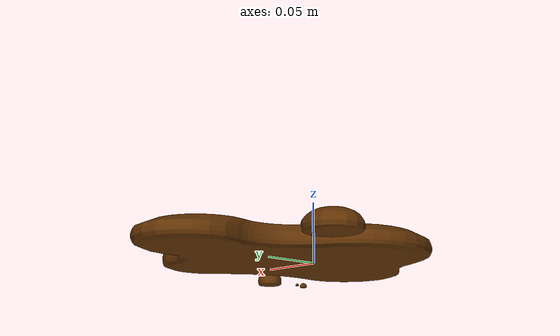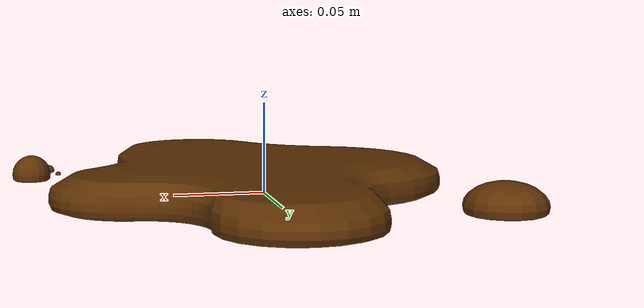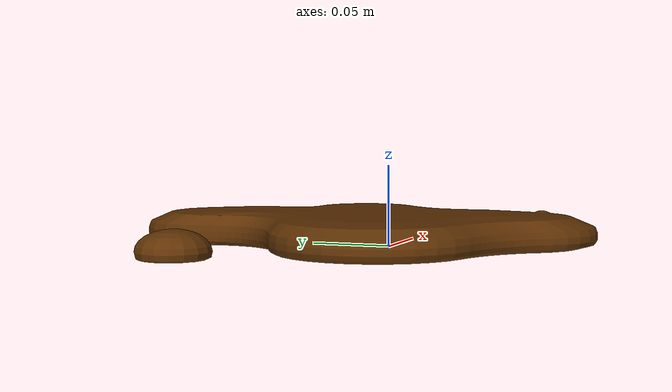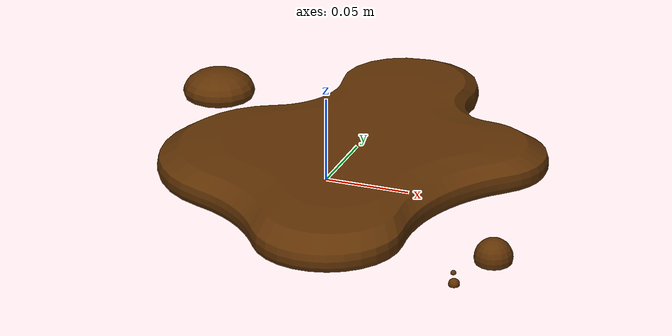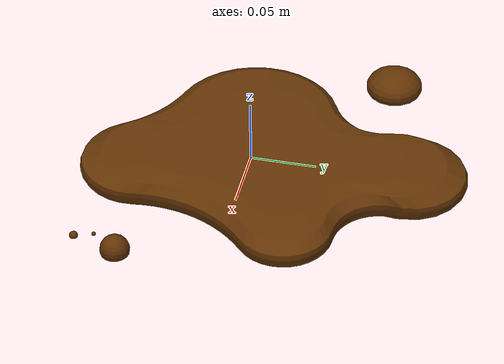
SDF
<?xml version='1.0'?>
<sdf version='1.6'>
  <model name='coffee_spill'>
    <link name='link_0'>
      <pose frame=''>0 0 0 0 -0 0</pose>
      <inertial>
        <mass>1</mass>
        <inertia>
          <ixx>0.166667</ixx>
          <ixy>0</ixy>
          <ixz>0</ixz>
          <iyy>0.166667</iyy>
          <iyz>0</iyz>
          <izz>0.166667</izz>
        </inertia>
      </inertial>
      <visual name='visual'>
        <pose frame=''>0 0 0 0 -0 0</pose>
        <geometry>
          <mesh>
            <uri>model://coffee_spill/meshes/spill.dae</uri>
            <scale>1 1 1</scale>
          </mesh>
        </geometry>
        <material>
          <lighting>1</lighting>
           <ambient>0.3803 0.1960 0.0156 1</ambient>
          <diffuse>0.3803 0.1960 0.0156 1</diffuse>
          <specular>0.01 0.01 0.01 1</specular>
          <emissive>0 0 0 1</emissive>
          <shader type='vertex'>
            <normal_map>__default__</normal_map>
          </shader>
        </material>
        <cast_shadows>1</cast_shadows>
        <transparency>0</transparency>
      </visual>
      <collision name='collision'>
        <laser_retro>0</laser_retro>
        <max_contacts>10</max_contacts>
        <pose frame=''>0 0 0 0 -0 0</pose>
        <geometry>
          <mesh>
            <uri>model://coffee_spill/meshes/spill.dae</uri>
            <scale>1 1 1</scale>
          </mesh>
        </geometry>

      </collision>
    </link>
    <static>1</static>
    <allow_auto_disable>1</allow_auto_disable>
  </model>
</sdf>
